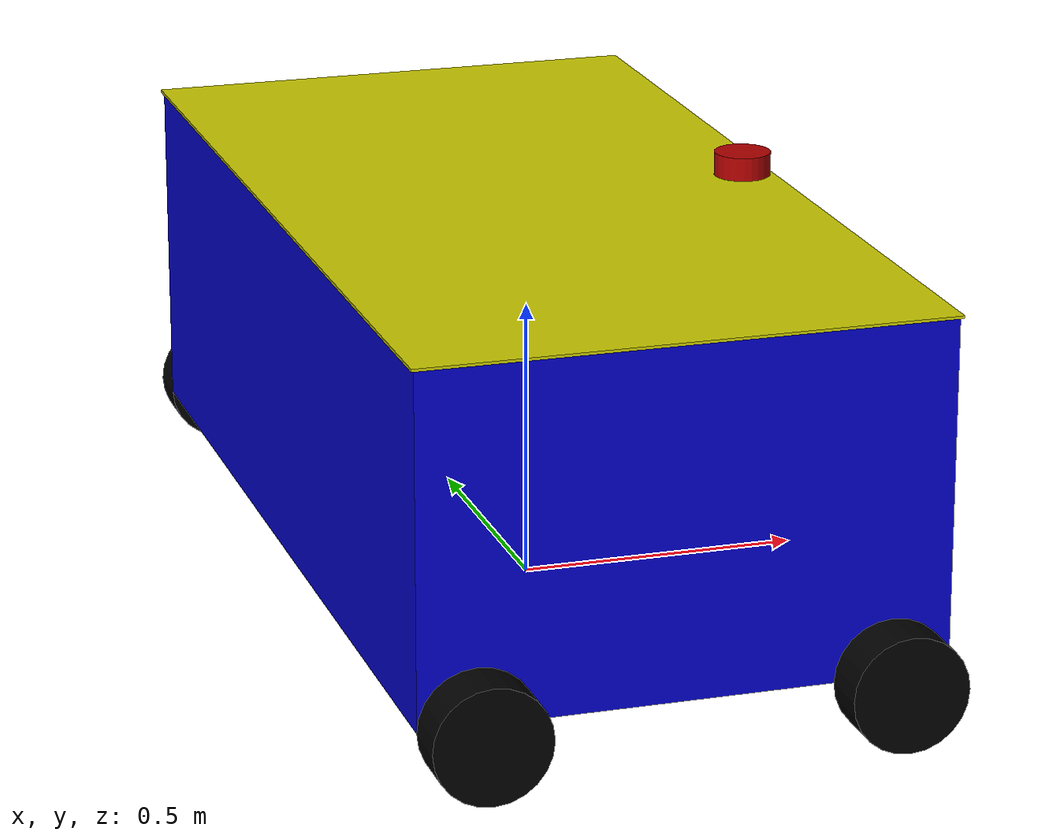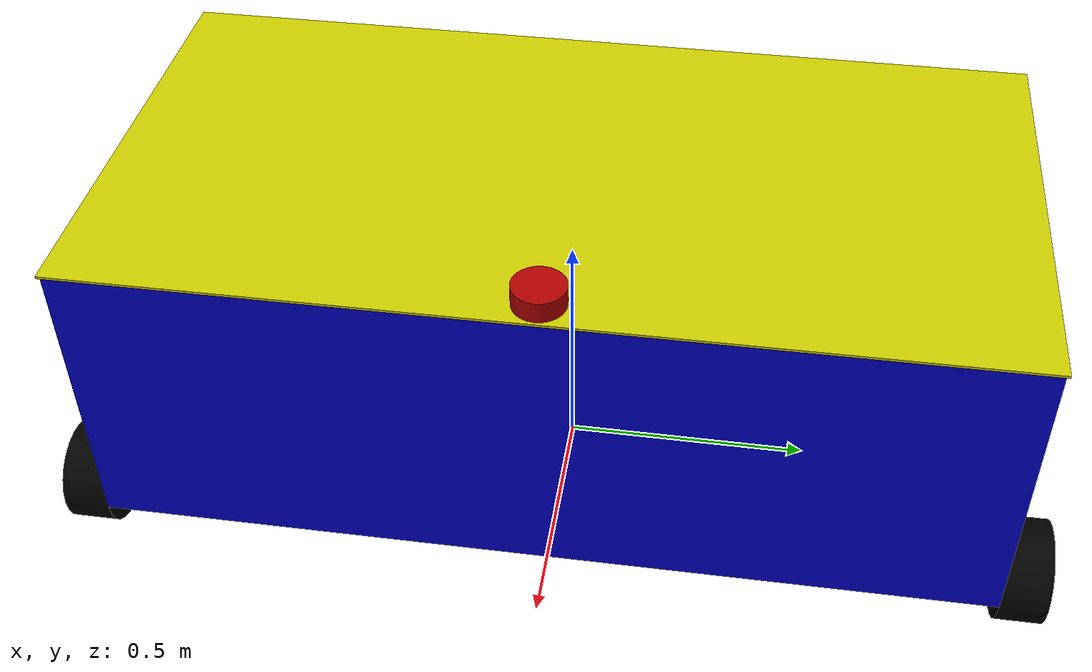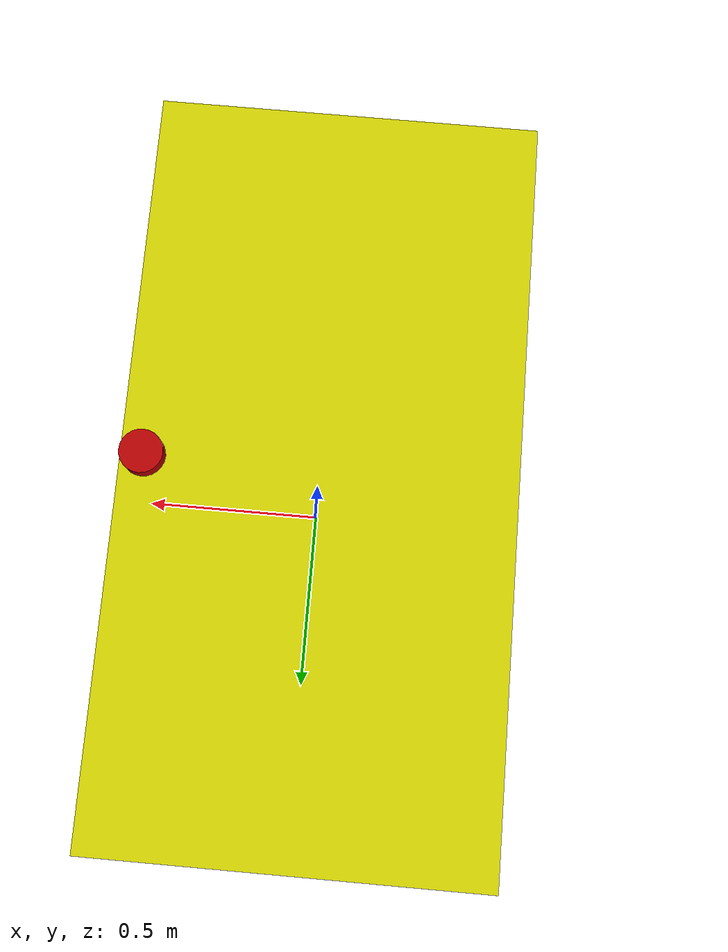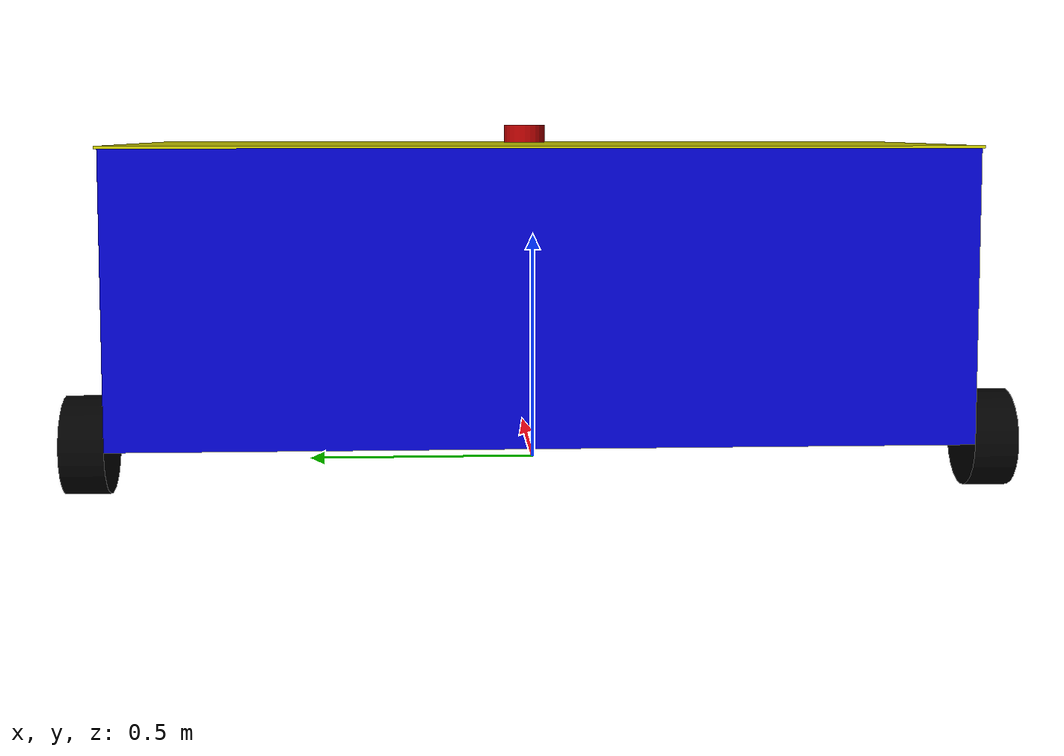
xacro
<?xml version="1.0"?>
<robot name="fourwheeler" xmlns:xacro="http://www.ros.org/wiki/xacro">

  <xacro:property name="base_with" value="1.75" />
  <xacro:property name="base_length" value="0.90" />
  <xacro:property name="base_height" value="0.60" />
  <xacro:property name="wheel_with" value="0.09" />
  <xacro:property name="wheel_radius" value="0.1" />
  <xacro:property name="wheel_y_pos" value="${base_with/2 + wheel_with/2}" />
  <xacro:property name="wheel_x_pos" value="${base_length/2 - wheel_radius}" />
  <xacro:property name="lowride" value="${(base_height/2) * -1}" />
  <xacro:property name="lidar_radius" value="0.05" />
  <xacro:property name="hood_height" value="0.005" />

  <link name="base_link">
    <visual>
      <geometry>
        <box size="${base_length} ${base_with} ${base_height}" />
      </geometry>
      <material name="blue">
        <color rgba="0 0 0.8 1" />
      </material>
    </visual>
  </link>

  <link name="base_footprint" />
  <joint name="base_footprint_to_base" type="fixed">
    <parent link="base_footprint" />
    <child link="base_link" />
    <origin xyz="0 0 ${-(lowride - wheel_radius)}" />
  </joint>

  <xacro:macro name="wheel" params="wheel_name reflect_y reflect_x">
  <link name="${wheel_name}">
    <visual>
      <geometry>
        <cylinder length="${wheel_with}" radius="${wheel_radius}" />
      </geometry>
      <material name="black">
        <color rgba="0 0 0 1" />
      </material>
    </visual>
  </link>

  <joint name="${wheel_name}_to_base" type="continuous">
    <parent link="base_link" />
    <child link="${wheel_name}" />
    <origin xyz="${wheel_x_pos * reflect_x} ${wheel_y_pos * reflect_y} ${lowride}" rpy="1.57 0 0" />
    <axis xyz="0 0 1" />
  </joint>
  </xacro:macro>

  <xacro:wheel wheel_name="front_left_wheel" reflect_y="1" reflect_x="1"/>
  <xacro:wheel wheel_name="front_right_wheel" reflect_y="-1" reflect_x="1"/>
  <xacro:wheel wheel_name="rear_left_wheel" reflect_y="1" reflect_x="-1"/>
  <xacro:wheel wheel_name="rear_right_wheel" reflect_y="-1" reflect_x="-1"/>

  <link name="hood">
    <visual>
      <geometry>
        <box size="${base_length + 0.01} ${base_with + 0.01} ${hood_height}" />
      </geometry>
      <material name="yellow">
        <color rgba="0.8 0.8 0 1" />
      </material>
    </visual>
  </link>

  <joint name="hood_to_base" type="fixed">
    <parent link="base_link" />
    <child link="hood" />
    <origin xyz="0 0 ${base_height/2 + hood_height/2}" />
  </joint>

    <link name="lidar">
    <visual>
      <geometry>
        <cylinder length="0.08" radius="${lidar_radius}" />
      </geometry>
      <material name="gray">
        <color rgba="0.7 0 0 1" />
      </material>
    </visual>
  </link>

  <joint name="lidar_to_hood" type="continuous">
    <parent link="hood" />
    <child link="lidar" />
    <origin xyz="${base_length/2 - lidar_radius} 0 0.004" rpy="0 0 0" />
    <axis xyz="0 0 1" />
  </joint>

</robot>
